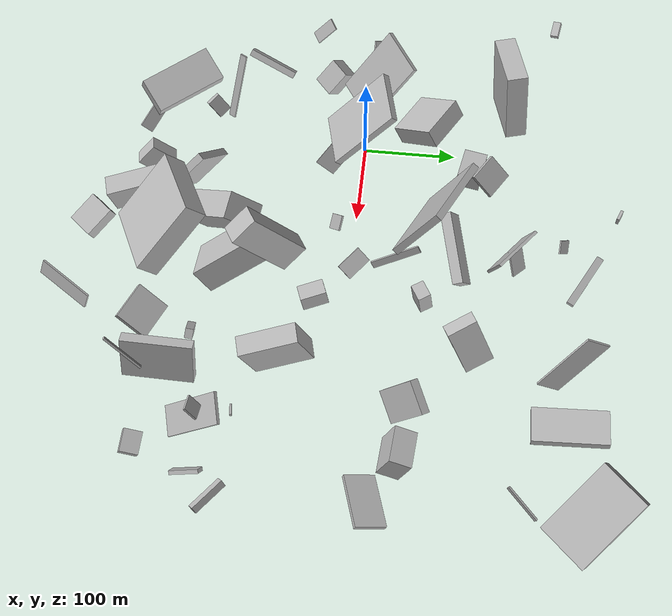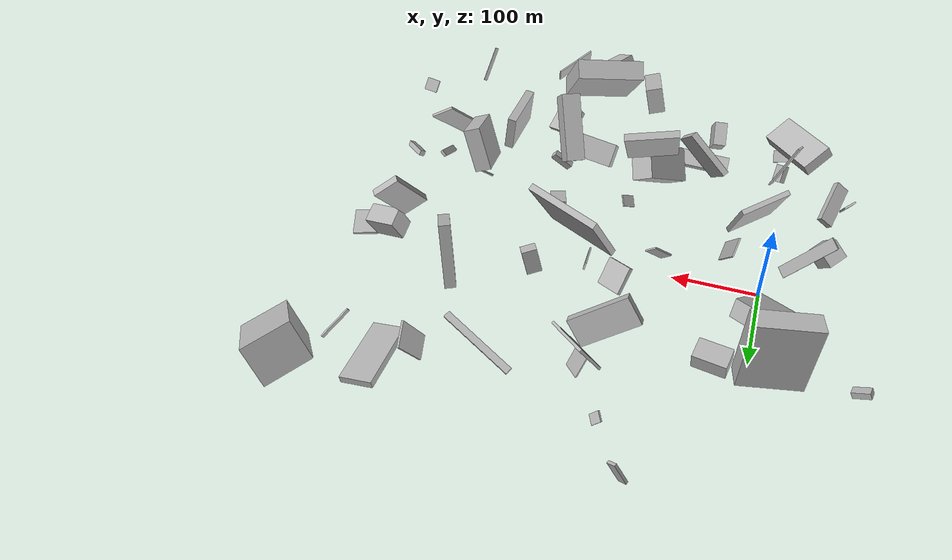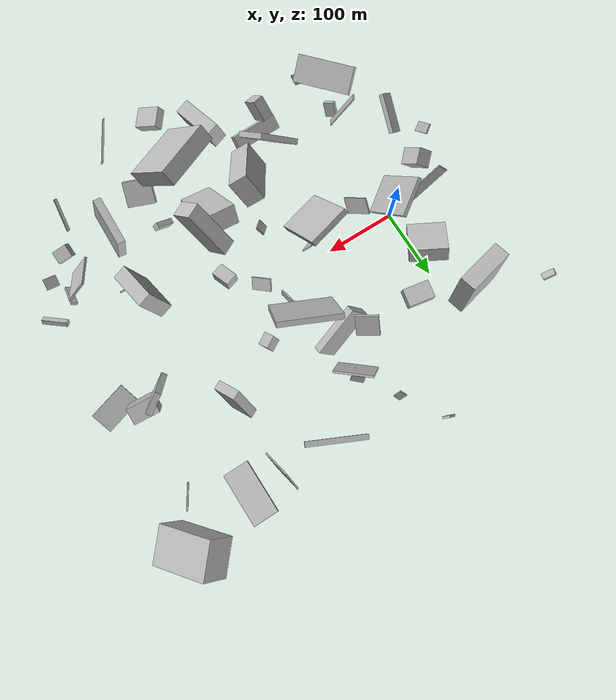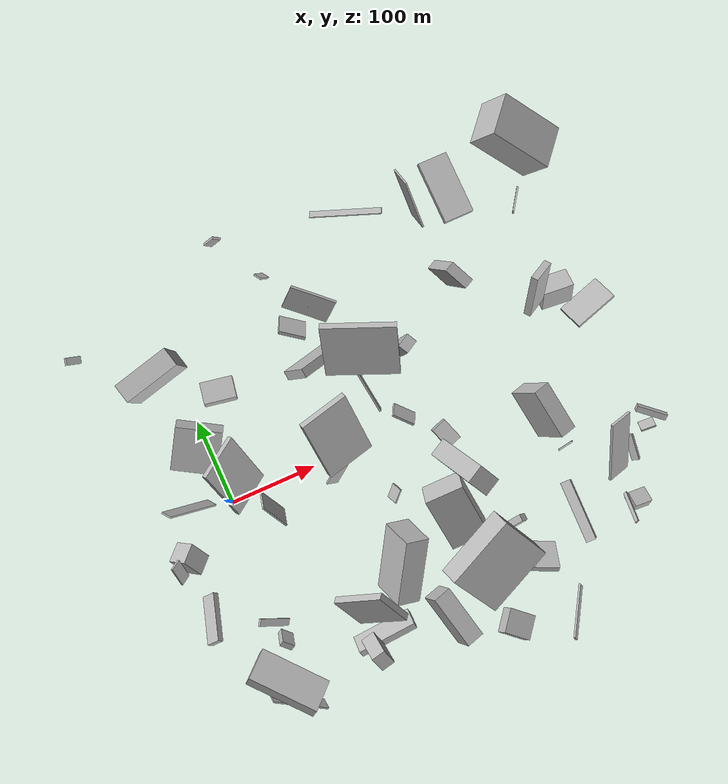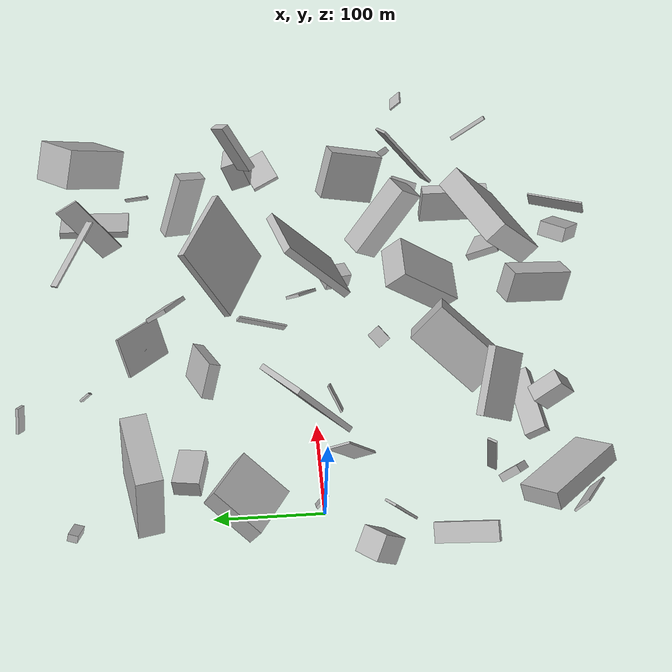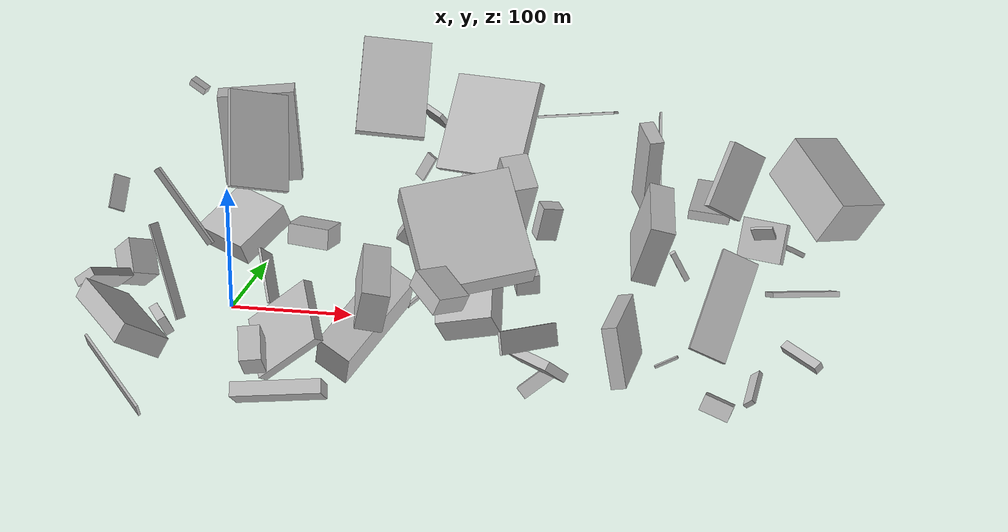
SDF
<sdf version="1.6">
 <world name="default">
  <scene>
   <sky><clouds><speed>12</speed></clouds></sky>
   <ambient>0.4 0.4 0.4 1</ambient>
   <background>0.7 0.7 0.7 1</background>
   <shadows>1</shadows>
  </scene>
  <gravity>0 0 -9.8066</gravity>
  <magnetic_field>6e-06 2.3e-05 -4.2e-05</magnetic_field>
  <physics default="0" name="default_physics" type="ode">
   <ode>
    <solver>
     <type>quick</type>
     <iters>10</iters>
     <sor>1.0</sor>
     <use_dynamic_moi_rescaling>0</use_dynamic_moi_rescaling>
    </solver>
    <constraints>
     <cfm>0</cfm>
     <erp>0.2</erp>
     <contact_max_correcting_vel>100</contact_max_correcting_vel>
     <contact_surface_layer>0.001</contact_surface_layer>
    </constraints>
   </ode>
   <max_step_size>0.004</max_step_size>
   <real_time_factor>1</real_time_factor>
   <real_time_update_rate>250</real_time_update_rate>
  </physics>
  <light name="sun" type="directional">
   <pose>0 0 10 0 0 0</pose>
   <diffuse>0.8 0.8 0.8 1</diffuse>
   <specular>0.2 0.2 0.2 1</specular>
   <attenuation>
    <range>1000</range>
    <constant>0.9</constant>
    <linear>0.01</linear>
    <quadratic>0.001</quadratic>
   </attenuation>
   <direction>-0.5 0.1 -0.9</direction>
  </light>
  <model name="building_1">
   <static>0</static>
   <pose>135.11531608683498 -135.79559603104371 60.600964509356665 2.161390322644908 -0.5540039236285031 1.0223039430514198</pose>
   <link name="link">
    <gravity>0</gravity>
    <pose>0 0 14.0 0 0 0</pose>
    <collision name="collision"><geometry><box><size>80 43 28</size></box></geometry></collision>
    <visual name="visual">
     <cast_shadows>0</cast_shadows>
     <geometry><box><size>80 43 28</size></box></geometry>
     <material>
      <script>
       <uri>model://HANNAS_wall/materials/scripts</uri>
       <uri>model://HANNAS_wall/materials/textures</uri>
       <name>vrc/HANNAS_wall</name>
      </script>
     </material>
    </visual>
   </link>
  </model>
  <model name="building_2">
   <static>0</static>
   <pose>135.61674107693483 216.1435291479652 21.61221724500912 2.274765037367589 -0.8799288791358028 3.094870508200572</pose>
   <link name="link">
    <gravity>0</gravity>
    <pose>0 0 5.5 0 0 0</pose>
    <collision name="collision"><geometry><box><size>14 2 11</size></box></geometry></collision>
    <visual name="visual">
     <cast_shadows>0</cast_shadows>
     <geometry><box><size>14 2 11</size></box></geometry>
     <material>
      <script>
       <uri>model://HANNAS_wall/materials/scripts</uri>
       <uri>model://HANNAS_wall/materials/textures</uri>
       <name>vrc/HANNAS_wall</name>
      </script>
     </material>
    </visual>
   </link>
  </model>
  <model name="building_3">
   <static>0</static>
   <pose>178.75855793924737 -238.16307017018386 103.83061704970618 -0.7098163001077181 -1.2607634040727518 -0.6142031225852523</pose>
   <link name="link">
    <gravity>0</gravity>
    <pose>0 0 30.5 0 0 0</pose>
    <collision name="collision"><geometry><box><size>31 20 61</size></box></geometry></collision>
    <visual name="visual">
     <cast_shadows>0</cast_shadows>
     <geometry><box><size>31 20 61</size></box></geometry>
     <material>
      <script>
       <uri>model://HANNAS_wall/materials/scripts</uri>
       <uri>model://HANNAS_wall/materials/textures</uri>
       <name>vrc/HANNAS_wall</name>
      </script>
     </material>
    </visual>
   </link>
  </model>
  <model name="building_4">
   <static>0</static>
   <pose>223.29696585347892 -102.03641801601826 67.91198506973893 -0.6900914582829918 0.19649372181718275 3.1366637834762336</pose>
   <link name="link">
    <gravity>0</gravity>
    <pose>0 0 13.5 0 0 0</pose>
    <collision name="collision"><geometry><box><size>43 74 27</size></box></geometry></collision>
    <visual name="visual">
     <cast_shadows>0</cast_shadows>
     <geometry><box><size>43 74 27</size></box></geometry>
     <material>
      <script>
       <uri>model://HANNAS_wall/materials/scripts</uri>
       <uri>model://HANNAS_wall/materials/textures</uri>
       <name>vrc/HANNAS_wall</name>
      </script>
     </material>
    </visual>
   </link>
  </model>
  <model name="building_5">
   <static>0</static>
   <pose>423.96064088625087 170.32642818873146 22.580603815545558 2.102462695021887 0.003981991492520609 2.5123887606604995</pose>
   <link name="link">
    <gravity>0</gravity>
    <pose>0 0 20.0 0 0 0</pose>
    <collision name="collision"><geometry><box><size>2 4 40</size></box></geometry></collision>
    <visual name="visual">
     <cast_shadows>0</cast_shadows>
     <geometry><box><size>2 4 40</size></box></geometry>
     <material>
      <script>
       <uri>model://HANNAS_wall/materials/scripts</uri>
       <uri>model://HANNAS_wall/materials/textures</uri>
       <name>vrc/HANNAS_wall</name>
      </script>
     </material>
    </visual>
   </link>
  </model>
  <model name="building_6">
   <static>0</static>
   <pose>455.81648045205947 40.27928548255646 27.900295135527863 -0.35100279136366697 0.024503716439567492 0.2958358905731354</pose>
   <link name="link">
    <gravity>0</gravity>
    <pose>0 0 2.0 0 0 0</pose>
    <collision name="collision"><geometry><box><size>53 31 4</size></box></geometry></collision>
    <visual name="visual">
     <cast_shadows>0</cast_shadows>
     <geometry><box><size>53 31 4</size></box></geometry>
     <material>
      <script>
       <uri>model://HANNAS_wall/materials/scripts</uri>
       <uri>model://HANNAS_wall/materials/textures</uri>
       <name>vrc/HANNAS_wall</name>
      </script>
     </material>
    </visual>
   </link>
  </model>
  <model name="building_7">
   <static>0</static>
   <pose>314.8673431732788 233.374579004466 65.01911994859711 0.011572708486025464 -1.061015212101421 1.7210231503841737</pose>
   <link name="link">
    <gravity>0</gravity>
    <pose>0 0 12.5 0 0 0</pose>
    <collision name="collision"><geometry><box><size>80 2 25</size></box></geometry></collision>
    <visual name="visual">
     <cast_shadows>0</cast_shadows>
     <geometry><box><size>80 2 25</size></box></geometry>
     <material>
      <script>
       <uri>model://HANNAS_wall/materials/scripts</uri>
       <uri>model://HANNAS_wall/materials/textures</uri>
       <name>vrc/HANNAS_wall</name>
      </script>
     </material>
    </visual>
   </link>
  </model>
  <model name="building_8">
   <static>0</static>
   <pose>43.07721971325648 -17.2620604006095 31.44816067269079 -0.5651036366355645 -0.8638225018651593 2.059942896450071</pose>
   <link name="link">
    <gravity>0</gravity>
    <pose>0 0 11.5 0 0 0</pose>
    <collision name="collision"><geometry><box><size>46 2 23</size></box></geometry></collision>
    <visual name="visual">
     <cast_shadows>0</cast_shadows>
     <geometry><box><size>46 2 23</size></box></geometry>
     <material>
      <script>
       <uri>model://HANNAS_wall/materials/scripts</uri>
       <uri>model://HANNAS_wall/materials/textures</uri>
       <name>vrc/HANNAS_wall</name>
      </script>
     </material>
    </visual>
   </link>
  </model>
  <model name="building_9">
   <static>0</static>
   <pose>441.6521193035824 226.79858882182634 51.431804077744 -1.9345870757318429 -1.0003825479083868 -0.4037390899181982</pose>
   <link name="link">
    <gravity>0</gravity>
    <pose>0 0 25.5 0 0 0</pose>
    <collision name="collision"><geometry><box><size>44 80 51</size></box></geometry></collision>
    <visual name="visual">
     <cast_shadows>0</cast_shadows>
     <geometry><box><size>44 80 51</size></box></geometry>
     <material>
      <script>
       <uri>model://HANNAS_wall/materials/scripts</uri>
       <uri>model://HANNAS_wall/materials/textures</uri>
       <name>vrc/HANNAS_wall</name>
      </script>
     </material>
    </visual>
   </link>
  </model>
  <model name="building_10">
   <static>0</static>
   <pose>139.22977169554127 134.04923806949358 126.38326764179808 0.8060878750686372 -0.25139558864643685 2.5267161810790397</pose>
   <link name="link">
    <gravity>0</gravity>
    <pose>0 0 2.0 0 0 0</pose>
    <collision name="collision"><geometry><box><size>29 27 4</size></box></geometry></collision>
    <visual name="visual">
     <cast_shadows>0</cast_shadows>
     <geometry><box><size>29 27 4</size></box></geometry>
     <material>
      <script>
       <uri>model://HANNAS_wall/materials/scripts</uri>
       <uri>model://HANNAS_wall/materials/textures</uri>
       <name>vrc/HANNAS_wall</name>
      </script>
     </material>
    </visual>
   </link>
  </model>
  <model name="building_11">
   <static>0</static>
   <pose>0.8268093542902041 -160.82893633170625 55.67216269910335 2.0864718969755494 0.4234822099807009 -0.8124348493261232</pose>
   <link name="link">
    <gravity>0</gravity>
    <pose>0 0 3.5 0 0 0</pose>
    <collision name="collision"><geometry><box><size>15 21 7</size></box></geometry></collision>
    <visual name="visual">
     <cast_shadows>0</cast_shadows>
     <geometry><box><size>15 21 7</size></box></geometry>
     <material>
      <script>
       <uri>model://HANNAS_wall/materials/scripts</uri>
       <uri>model://HANNAS_wall/materials/textures</uri>
       <name>vrc/HANNAS_wall</name>
      </script>
     </material>
    </visual>
   </link>
  </model>
  <model name="building_12">
   <static>0</static>
   <pose>-21.392426668105642 50.03890108561207 33.21267962919398 -0.2514722669743151 -1.0684433602969559 -1.884062338221587</pose>
   <link name="link">
    <gravity>0</gravity>
    <pose>0 0 26.0 0 0 0</pose>
    <collision name="collision"><geometry><box><size>21 52 52</size></box></geometry></collision>
    <visual name="visual">
     <cast_shadows>0</cast_shadows>
     <geometry><box><size>21 52 52</size></box></geometry>
     <material>
      <script>
       <uri>model://HANNAS_wall/materials/scripts</uri>
       <uri>model://HANNAS_wall/materials/textures</uri>
       <name>vrc/HANNAS_wall</name>
      </script>
     </material>
    </visual>
   </link>
  </model>
  <model name="building_13">
   <static>0</static>
   <pose>-16.388459606181595 -234.3540413823772 42.504206615960996 2.646307544605016 -0.57433010160131 2.534376103822763</pose>
   <link name="link">
    <gravity>0</gravity>
    <pose>0 0 8.0 0 0 0</pose>
    <collision name="collision"><geometry><box><size>70 2 16</size></box></geometry></collision>
    <visual name="visual">
     <cast_shadows>0</cast_shadows>
     <geometry><box><size>70 2 16</size></box></geometry>
     <material>
      <script>
       <uri>model://HANNAS_wall/materials/scripts</uri>
       <uri>model://HANNAS_wall/materials/textures</uri>
       <name>vrc/HANNAS_wall</name>
      </script>
     </material>
    </visual>
   </link>
  </model>
  <model name="building_14">
   <static>0</static>
   <pose>433.5668517714506 -127.2888201345599 20.75387855407132 -2.6641499090402494 -0.6627492406556755 -0.38305530969943813</pose>
   <link name="link">
    <gravity>0</gravity>
    <pose>0 0 2.0 0 0 0</pose>
    <collision name="collision"><geometry><box><size>9 31 4</size></box></geometry></collision>
    <visual name="visual">
     <cast_shadows>0</cast_shadows>
     <geometry><box><size>9 31 4</size></box></geometry>
     <material>
      <script>
       <uri>model://HANNAS_wall/materials/scripts</uri>
       <uri>model://HANNAS_wall/materials/textures</uri>
       <name>vrc/HANNAS_wall</name>
      </script>
     </material>
    </visual>
   </link>
  </model>
  <model name="building_15">
   <static>0</static>
   <pose>340.4433211470405 -45.014293825362245 82.48849047484183 0.31630144019089756 0.26320142379083683 0.2521557191065774</pose>
   <link name="link">
    <gravity>0</gravity>
    <pose>0 0 25.5 0 0 0</pose>
    <collision name="collision"><geometry><box><size>19 57 51</size></box></geometry></collision>
    <visual name="visual">
     <cast_shadows>0</cast_shadows>
     <geometry><box><size>19 57 51</size></box></geometry>
     <material>
      <script>
       <uri>model://HANNAS_wall/materials/scripts</uri>
       <uri>model://HANNAS_wall/materials/textures</uri>
       <name>vrc/HANNAS_wall</name>
      </script>
     </material>
    </visual>
   </link>
  </model>
  <model name="building_16">
   <static>0</static>
   <pose>164.50591066364703 -71.23481308604141 42.28489024791164 0.9906192739458065 0.6335838136850434 1.9776007864013656</pose>
   <link name="link">
    <gravity>0</gravity>
    <pose>0 0 8.5 0 0 0</pose>
    <collision name="collision"><geometry><box><size>14 2 17</size></box></geometry></collision>
    <visual name="visual">
     <cast_shadows>0</cast_shadows>
     <geometry><box><size>14 2 17</size></box></geometry>
     <material>
      <script>
       <uri>model://HANNAS_wall/materials/scripts</uri>
       <uri>model://HANNAS_wall/materials/textures</uri>
       <name>vrc/HANNAS_wall</name>
      </script>
     </material>
    </visual>
   </link>
  </model>
  <model name="building_17">
   <static>0</static>
   <pose>92.8466335044842 -172.19659834550222 57.85222205167442 2.1544672280583805 -0.7049041731075413 2.037222814082844</pose>
   <link name="link">
    <gravity>0</gravity>
    <pose>0 0 4.0 0 0 0</pose>
    <collision name="collision"><geometry><box><size>49 65 8</size></box></geometry></collision>
    <visual name="visual">
     <cast_shadows>0</cast_shadows>
     <geometry><box><size>49 65 8</size></box></geometry>
     <material>
      <script>
       <uri>model://HANNAS_wall/materials/scripts</uri>
       <uri>model://HANNAS_wall/materials/textures</uri>
       <name>vrc/HANNAS_wall</name>
      </script>
     </material>
    </visual>
   </link>
  </model>
  <model name="building_18">
   <static>0</static>
   <pose>380.47113649940525 225.08474086537632 34.30816833495241 1.4703367738130637 0.03897958823185189 -1.557707657894082</pose>
   <link name="link">
    <gravity>0</gravity>
    <pose>0 0 17.5 0 0 0</pose>
    <collision name="collision"><geometry><box><size>73 8 35</size></box></geometry></collision>
    <visual name="visual">
     <cast_shadows>0</cast_shadows>
     <geometry><box><size>73 8 35</size></box></geometry>
     <material>
      <script>
       <uri>model://HANNAS_wall/materials/scripts</uri>
       <uri>model://HANNAS_wall/materials/textures</uri>
       <name>vrc/HANNAS_wall</name>
      </script>
     </material>
    </visual>
   </link>
  </model>
  <model name="building_19">
   <static>0</static>
   <pose>235.39898413902287 -50.844341197245186 104.26417111288146 -0.0832283427314771 -0.6742971092831568 2.124597223566311</pose>
   <link name="link">
    <gravity>0</gravity>
    <pose>0 0 38.0 0 0 0</pose>
    <collision name="collision"><geometry><box><size>30 21 76</size></box></geometry></collision>
    <visual name="visual">
     <cast_shadows>0</cast_shadows>
     <geometry><box><size>30 21 76</size></box></geometry>
     <material>
      <script>
       <uri>model://HANNAS_wall/materials/scripts</uri>
       <uri>model://HANNAS_wall/materials/textures</uri>
       <name>vrc/HANNAS_wall</name>
      </script>
     </material>
    </visual>
   </link>
  </model>
  <model name="building_20">
   <static>0</static>
   <pose>122.77107511633582 98.71629780380508 45.52075567420934 2.145009563785714 -0.3646938035843489 1.6332416154063332</pose>
   <link name="link">
    <gravity>0</gravity>
    <pose>0 0 37.0 0 0 0</pose>
    <collision name="collision"><geometry><box><size>11 34 74</size></box></geometry></collision>
    <visual name="visual">
     <cast_shadows>0</cast_shadows>
     <geometry><box><size>11 34 74</size></box></geometry>
     <material>
      <script>
       <uri>model://HANNAS_wall/materials/scripts</uri>
       <uri>model://HANNAS_wall/materials/textures</uri>
       <name>vrc/HANNAS_wall</name>
      </script>
     </material>
    </visual>
   </link>
  </model>
  <model name="building_21">
   <static>0</static>
   <pose>-71.58215854234692 -109.90596122987716 57.50533043410116 0.872474737504659 0.346031111593875 1.3084614752208663</pose>
   <link name="link">
    <gravity>0</gravity>
    <pose>0 0 8.5 0 0 0</pose>
    <collision name="collision"><geometry><box><size>54 7 17</size></box></geometry></collision>
    <visual name="visual">
     <cast_shadows>0</cast_shadows>
     <geometry><box><size>54 7 17</size></box></geometry>
     <material>
      <script>
       <uri>model://HANNAS_wall/materials/scripts</uri>
       <uri>model://HANNAS_wall/materials/textures</uri>
       <name>vrc/HANNAS_wall</name>
      </script>
     </material>
    </visual>
   </link>
  </model>
  <model name="building_22">
   <static>0</static>
   <pose>138.90490188476747 -19.092693762620513 160.13088909565312 -0.16099129115817656 -0.7036365352657468 -1.227870183724312</pose>
   <link name="link">
    <gravity>0</gravity>
    <pose>0 0 40.0 0 0 0</pose>
    <collision name="collision"><geometry><box><size>7 53 80</size></box></geometry></collision>
    <visual name="visual">
     <cast_shadows>0</cast_shadows>
     <geometry><box><size>7 53 80</size></box></geometry>
     <material>
      <script>
       <uri>model://HANNAS_wall/materials/scripts</uri>
       <uri>model://HANNAS_wall/materials/textures</uri>
       <name>vrc/HANNAS_wall</name>
      </script>
     </material>
    </visual>
   </link>
  </model>
  <model name="building_23">
   <static>0</static>
   <pose>247.05535825713645 -197.4358885837027 113.11696673292258 0.7515598997424334 0.11784344384251783 -2.7064388232252456</pose>
   <link name="link">
    <gravity>0</gravity>
    <pose>0 0 40.0 0 0 0</pose>
    <collision name="collision"><geometry><box><size>80 23 80</size></box></geometry></collision>
    <visual name="visual">
     <cast_shadows>0</cast_shadows>
     <geometry><box><size>80 23 80</size></box></geometry>
     <material>
      <script>
       <uri>model://HANNAS_wall/materials/scripts</uri>
       <uri>model://HANNAS_wall/materials/textures</uri>
       <name>vrc/HANNAS_wall</name>
      </script>
     </material>
    </visual>
   </link>
  </model>
  <model name="building_24">
   <static>0</static>
   <pose>190.7627048626744 64.32881093626906 103.58354933112244 0.5241597439389103 0.06790457783457442 2.736071886148128</pose>
   <link name="link">
    <gravity>0</gravity>
    <pose>0 0 40.0 0 0 0</pose>
    <collision name="collision"><geometry><box><size>80 7 80</size></box></geometry></collision>
    <visual name="visual">
     <cast_shadows>0</cast_shadows>
     <geometry><box><size>80 7 80</size></box></geometry>
     <material>
      <script>
       <uri>model://HANNAS_wall/materials/scripts</uri>
       <uri>model://HANNAS_wall/materials/textures</uri>
       <name>vrc/HANNAS_wall</name>
      </script>
     </material>
    </visual>
   </link>
  </model>
  <model name="building_25">
   <static>0</static>
   <pose>-70.55198439202829 -60.63912458746074 99.77644558316706 0.5934138296146869 -0.44129921334191824 -2.5346180278155046</pose>
   <link name="link">
    <gravity>0</gravity>
    <pose>0 0 14.0 0 0 0</pose>
    <collision name="collision"><geometry><box><size>13 2 28</size></box></geometry></collision>
    <visual name="visual">
     <cast_shadows>0</cast_shadows>
     <geometry><box><size>13 2 28</size></box></geometry>
     <material>
      <script>
       <uri>model://HANNAS_wall/materials/scripts</uri>
       <uri>model://HANNAS_wall/materials/textures</uri>
       <name>vrc/HANNAS_wall</name>
      </script>
     </material>
    </visual>
   </link>
  </model>
  <model name="building_26">
   <static>0</static>
   <pose>94.35777094716182 278.44724473153406 35.561136361725765 -2.884006043196968 1.0500979655486808 2.9797485487806585</pose>
   <link name="link">
    <gravity>0</gravity>
    <pose>0 0 5.0 0 0 0</pose>
    <collision name="collision"><geometry><box><size>25 3 10</size></box></geometry></collision>
    <visual name="visual">
     <cast_shadows>0</cast_shadows>
     <geometry><box><size>25 3 10</size></box></geometry>
     <material>
      <script>
       <uri>model://HANNAS_wall/materials/scripts</uri>
       <uri>model://HANNAS_wall/materials/textures</uri>
       <name>vrc/HANNAS_wall</name>
      </script>
     </material>
    </visual>
   </link>
  </model>
  <model name="building_27">
   <static>0</static>
   <pose>382.4154677482592 -196.51474382936078 147.93799539352642 2.5494414889871937 -0.5526348180059264 2.2648297732238825</pose>
   <link name="link">
    <gravity>0</gravity>
    <pose>0 0 22.0 0 0 0</pose>
    <collision name="collision"><geometry><box><size>2 4 44</size></box></geometry></collision>
    <visual name="visual">
     <cast_shadows>0</cast_shadows>
     <geometry><box><size>2 4 44</size></box></geometry>
     <material>
      <script>
       <uri>model://HANNAS_wall/materials/scripts</uri>
       <uri>model://HANNAS_wall/materials/textures</uri>
       <name>vrc/HANNAS_wall</name>
      </script>
     </material>
    </visual>
   </link>
  </model>
  <model name="building_28">
   <static>0</static>
   <pose>-15.734996624940095 156.01040899280537 56.23523198399526 0.06191540156217229 0.057323141073579865 -1.3342355935003376</pose>
   <link name="link">
    <gravity>0</gravity>
    <pose>0 0 40.0 0 0 0</pose>
    <collision name="collision"><geometry><box><size>22 65 80</size></box></geometry></collision>
    <visual name="visual">
     <cast_shadows>0</cast_shadows>
     <geometry><box><size>22 65 80</size></box></geometry>
     <material>
      <script>
       <uri>model://HANNAS_wall/materials/scripts</uri>
       <uri>model://HANNAS_wall/materials/textures</uri>
       <name>vrc/HANNAS_wall</name>
      </script>
     </material>
    </visual>
   </link>
  </model>
  <model name="building_29">
   <static>0</static>
   <pose>-59.281395736590255 -48.50751180764706 37.783411697180625 -0.37443496896006756 -0.6687130842143159 -0.52735877288389</pose>
   <link name="link">
    <gravity>0</gravity>
    <pose>0 0 15.0 0 0 0</pose>
    <collision name="collision"><geometry><box><size>23 23 30</size></box></geometry></collision>
    <visual name="visual">
     <cast_shadows>0</cast_shadows>
     <geometry><box><size>23 23 30</size></box></geometry>
     <material>
      <script>
       <uri>model://HANNAS_wall/materials/scripts</uri>
       <uri>model://HANNAS_wall/materials/textures</uri>
       <name>vrc/HANNAS_wall</name>
      </script>
     </material>
    </visual>
   </link>
  </model>
  <model name="building_30">
   <static>0</static>
   <pose>7.33620002609135 -146.1587050656395 48.89348382315542 0.3616950128811923 0.01554820659155918 -2.149120290145447</pose>
   <link name="link">
    <gravity>0</gravity>
    <pose>0 0 37.0 0 0 0</pose>
    <collision name="collision"><geometry><box><size>8 2 74</size></box></geometry></collision>
    <visual name="visual">
     <cast_shadows>0</cast_shadows>
     <geometry><box><size>8 2 74</size></box></geometry>
     <material>
      <script>
       <uri>model://HANNAS_wall/materials/scripts</uri>
       <uri>model://HANNAS_wall/materials/textures</uri>
       <name>vrc/HANNAS_wall</name>
      </script>
     </material>
    </visual>
   </link>
  </model>
  <model name="building_31">
   <static>0</static>
   <pose>315.56519866529356 134.23786469351774 64.08730600722583 -0.027190506124678413 -0.3183351571352796 2.0448188901442097</pose>
   <link name="link">
    <gravity>0</gravity>
    <pose>0 0 35.5 0 0 0</pose>
    <collision name="collision"><geometry><box><size>29 12 71</size></box></geometry></collision>
    <visual name="visual">
     <cast_shadows>0</cast_shadows>
     <geometry><box><size>29 12 71</size></box></geometry>
     <material>
      <script>
       <uri>model://HANNAS_wall/materials/scripts</uri>
       <uri>model://HANNAS_wall/materials/textures</uri>
       <name>vrc/HANNAS_wall</name>
      </script>
     </material>
    </visual>
   </link>
  </model>
  <model name="building_32">
   <static>0</static>
   <pose>421.04032872065636 56.39089969025588 66.53055637940462 1.9460736063651867 -0.09896170702569732 3.05909131945772</pose>
   <link name="link">
    <gravity>0</gravity>
    <pose>0 0 11.0 0 0 0</pose>
    <collision name="collision"><geometry><box><size>35 32 22</size></box></geometry></collision>
    <visual name="visual">
     <cast_shadows>0</cast_shadows>
     <geometry><box><size>35 32 22</size></box></geometry>
     <material>
      <script>
       <uri>model://HANNAS_wall/materials/scripts</uri>
       <uri>model://HANNAS_wall/materials/textures</uri>
       <name>vrc/HANNAS_wall</name>
      </script>
     </material>
    </visual>
   </link>
  </model>
  <model name="building_33">
   <static>0</static>
   <pose>466.57577497421045 -101.6076111977809 39.01654222217191 -2.9462345366435208 -0.5640263720979957 0.7666271557444938</pose>
   <link name="link">
    <gravity>0</gravity>
    <pose>0 0 3.5 0 0 0</pose>
    <collision name="collision"><geometry><box><size>7 36 7</size></box></geometry></collision>
    <visual name="visual">
     <cast_shadows>0</cast_shadows>
     <geometry><box><size>7 36 7</size></box></geometry>
     <material>
      <script>
       <uri>model://HANNAS_wall/materials/scripts</uri>
       <uri>model://HANNAS_wall/materials/textures</uri>
       <name>vrc/HANNAS_wall</name>
      </script>
     </material>
    </visual>
   </link>
  </model>
  <model name="building_34">
   <static>0</static>
   <pose>349.08573358250305 -164.84435419137444 66.48926434483107 1.7407554890480703 -0.021919417956759387 -1.588575031650913</pose>
   <link name="link">
    <gravity>0</gravity>
    <pose>0 0 5.5 0 0 0</pose>
    <collision name="collision"><geometry><box><size>69 46 11</size></box></geometry></collision>
    <visual name="visual">
     <cast_shadows>0</cast_shadows>
     <geometry><box><size>69 46 11</size></box></geometry>
     <material>
      <script>
       <uri>model://HANNAS_wall/materials/scripts</uri>
       <uri>model://HANNAS_wall/materials/textures</uri>
       <name>vrc/HANNAS_wall</name>
      </script>
     </material>
    </visual>
   </link>
  </model>
  <model name="building_35">
   <static>0</static>
   <pose>238.2985975357127 -251.7640200400325 119.44313656907102 1.1351828411024767 -0.12820788748457215 -2.2508914451213653</pose>
   <link name="link">
    <gravity>0</gravity>
    <pose>0 0 15.5 0 0 0</pose>
    <collision name="collision"><geometry><box><size>26 14 31</size></box></geometry></collision>
    <visual name="visual">
     <cast_shadows>0</cast_shadows>
     <geometry><box><size>26 14 31</size></box></geometry>
     <material>
      <script>
       <uri>model://HANNAS_wall/materials/scripts</uri>
       <uri>model://HANNAS_wall/materials/textures</uri>
       <name>vrc/HANNAS_wall</name>
      </script>
     </material>
    </visual>
   </link>
  </model>
  <model name="building_36">
   <static>0</static>
   <pose>131.87986423145264 -199.0151099337448 25.192500662127113 -1.6882765910314916 0.6258779462673086 1.5705109840103162</pose>
   <link name="link">
    <gravity>0</gravity>
    <pose>0 0 34.0 0 0 0</pose>
    <collision name="collision"><geometry><box><size>21 11 68</size></box></geometry></collision>
    <visual name="visual">
     <cast_shadows>0</cast_shadows>
     <geometry><box><size>21 11 68</size></box></geometry>
     <material>
      <script>
       <uri>model://HANNAS_wall/materials/scripts</uri>
       <uri>model://HANNAS_wall/materials/textures</uri>
       <name>vrc/HANNAS_wall</name>
      </script>
     </material>
    </visual>
   </link>
  </model>
  <model name="building_37">
   <static>0</static>
   <pose>-42.66285339776239 12.436904695407149 77.42302044696046 -0.7101142984486626 -0.9411377947490223 3.0641774089120286</pose>
   <link name="link">
    <gravity>0</gravity>
    <pose>0 0 6.5 0 0 0</pose>
    <collision name="collision"><geometry><box><size>74 2 13</size></box></geometry></collision>
    <visual name="visual">
     <cast_shadows>0</cast_shadows>
     <geometry><box><size>74 2 13</size></box></geometry>
     <material>
      <script>
       <uri>model://HANNAS_wall/materials/scripts</uri>
       <uri>model://HANNAS_wall/materials/textures</uri>
       <name>vrc/HANNAS_wall</name>
      </script>
     </material>
    </visual>
   </link>
  </model>
  <model name="building_38">
   <static>0</static>
   <pose>-42.96426594959502 -173.323623690384 74.59995365810536 1.6747583730577893 0.534293888238807 0.7482020941136158</pose>
   <link name="link">
    <gravity>0</gravity>
    <pose>0 0 40.0 0 0 0</pose>
    <collision name="collision"><geometry><box><size>38 16 80</size></box></geometry></collision>
    <visual name="visual">
     <cast_shadows>0</cast_shadows>
     <geometry><box><size>38 16 80</size></box></geometry>
     <material>
      <script>
       <uri>model://HANNAS_wall/materials/scripts</uri>
       <uri>model://HANNAS_wall/materials/textures</uri>
       <name>vrc/HANNAS_wall</name>
      </script>
     </material>
    </visual>
   </link>
  </model>
  <model name="building_39">
   <static>0</static>
   <pose>186.52961979652065 71.04634980021113 63.39361282877428 2.0357149493043076 -0.2420490569723828 0.024871236086461246</pose>
   <link name="link">
    <gravity>0</gravity>
    <pose>0 0 26.0 0 0 0</pose>
    <collision name="collision"><geometry><box><size>2 8 52</size></box></geometry></collision>
    <visual name="visual">
     <cast_shadows>0</cast_shadows>
     <geometry><box><size>2 8 52</size></box></geometry>
     <material>
      <script>
       <uri>model://HANNAS_wall/materials/scripts</uri>
       <uri>model://HANNAS_wall/materials/textures</uri>
       <name>vrc/HANNAS_wall</name>
      </script>
     </material>
    </visual>
   </link>
  </model>
  <model name="building_40">
   <static>0</static>
   <pose>36.450375073509505 119.04509159807151 13.232327692991936 -0.033791431847180746 -0.07073230707081604 -1.7450053811573372</pose>
   <link name="link">
    <gravity>0</gravity>
    <pose>0 0 9.0 0 0 0</pose>
    <collision name="collision"><geometry><box><size>25 37 18</size></box></geometry></collision>
    <visual name="visual">
     <cast_shadows>0</cast_shadows>
     <geometry><box><size>25 37 18</size></box></geometry>
     <material>
      <script>
       <uri>model://HANNAS_wall/materials/scripts</uri>
       <uri>model://HANNAS_wall/materials/textures</uri>
       <name>vrc/HANNAS_wall</name>
      </script>
     </material>
    </visual>
   </link>
  </model>
  <model name="building_41">
   <static>0</static>
   <pose>436.7981040960243 -109.13363666111564 135.11672150821298 2.27114827352819 -0.13447315543877053 -0.07620786210136102</pose>
   <link name="link">
    <gravity>0</gravity>
    <pose>0 0 1.0 0 0 0</pose>
    <collision name="collision"><geometry><box><size>16 15 2</size></box></geometry></collision>
    <visual name="visual">
     <cast_shadows>0</cast_shadows>
     <geometry><box><size>16 15 2</size></box></geometry>
     <material>
      <script>
       <uri>model://HANNAS_wall/materials/scripts</uri>
       <uri>model://HANNAS_wall/materials/textures</uri>
       <name>vrc/HANNAS_wall</name>
      </script>
     </material>
    </visual>
   </link>
  </model>
  <model name="building_42">
   <static>0</static>
   <pose>80.85835306734867 -205.7890628569507 67.9636935205549 2.412022410088866 -0.08227842825065966 0.20707153940024162</pose>
   <link name="link">
    <gravity>0</gravity>
    <pose>0 0 13.0 0 0 0</pose>
    <collision name="collision"><geometry><box><size>16 30 26</size></box></geometry></collision>
    <visual name="visual">
     <cast_shadows>0</cast_shadows>
     <geometry><box><size>16 30 26</size></box></geometry>
     <material>
      <script>
       <uri>model://HANNAS_wall/materials/scripts</uri>
       <uri>model://HANNAS_wall/materials/textures</uri>
       <name>vrc/HANNAS_wall</name>
      </script>
     </material>
    </visual>
   </link>
  </model>
  <model name="building_43">
   <static>0</static>
   <pose>-78.15933158726871 196.87679253323267 117.79088825583199 -1.0586050022660827 -0.12412955673325608 1.3071000339871355</pose>
   <link name="link">
    <gravity>0</gravity>
    <pose>0 0 8.0 0 0 0</pose>
    <collision name="collision"><geometry><box><size>8 6 16</size></box></geometry></collision>
    <visual name="visual">
     <cast_shadows>0</cast_shadows>
     <geometry><box><size>8 6 16</size></box></geometry>
     <material>
      <script>
       <uri>model://HANNAS_wall/materials/scripts</uri>
       <uri>model://HANNAS_wall/materials/textures</uri>
       <name>vrc/HANNAS_wall</name>
      </script>
     </material>
    </visual>
   </link>
  </model>
  <model name="building_44">
   <static>0</static>
   <pose>282.0831370018386 -149.86589956739553 18.2122250589061 -0.7011524163156525 0.16198336150889447 1.568867193499473</pose>
   <link name="link">
    <gravity>0</gravity>
    <pose>0 0 5.0 0 0 0</pose>
    <collision name="collision"><geometry><box><size>8 28 10</size></box></geometry></collision>
    <visual name="visual">
     <cast_shadows>0</cast_shadows>
     <geometry><box><size>8 28 10</size></box></geometry>
     <material>
      <script>
       <uri>model://HANNAS_wall/materials/scripts</uri>
       <uri>model://HANNAS_wall/materials/textures</uri>
       <name>vrc/HANNAS_wall</name>
      </script>
     </material>
    </visual>
   </link>
  </model>
  <model name="building_45">
   <static>0</static>
   <pose>284.1859178278454 -194.10555294086285 53.65797475269953 -0.20563847848513106 -0.6160206363059738 -1.8917210539251965</pose>
   <link name="link">
    <gravity>0</gravity>
    <pose>0 0 3.5 0 0 0</pose>
    <collision name="collision"><geometry><box><size>35 39 7</size></box></geometry></collision>
    <visual name="visual">
     <cast_shadows>0</cast_shadows>
     <geometry><box><size>35 39 7</size></box></geometry>
     <material>
      <script>
       <uri>model://HANNAS_wall/materials/scripts</uri>
       <uri>model://HANNAS_wall/materials/textures</uri>
       <name>vrc/HANNAS_wall</name>
      </script>
     </material>
    </visual>
   </link>
  </model>
  <model name="building_46">
   <static>0</static>
   <pose>404.9489990774073 83.16360219254798 132.41830987405282 -2.8472177129309872 -0.5406196093483325 -2.6396765704178726</pose>
   <link name="link">
    <gravity>0</gravity>
    <pose>0 0 27.5 0 0 0</pose>
    <collision name="collision"><geometry><box><size>31 8 55</size></box></geometry></collision>
    <visual name="visual">
     <cast_shadows>0</cast_shadows>
     <geometry><box><size>31 8 55</size></box></geometry>
     <material>
      <script>
       <uri>model://HANNAS_wall/materials/scripts</uri>
       <uri>model://HANNAS_wall/materials/textures</uri>
       <name>vrc/HANNAS_wall</name>
      </script>
     </material>
    </visual>
   </link>
  </model>
  <model name="building_47">
   <static>0</static>
   <pose>419.3092798845347 -93.26495592473691 108.69538827945794 -2.5078164126142948 -0.45767069624729345 -2.9080907474918827</pose>
   <link name="link">
    <gravity>0</gravity>
    <pose>0 0 40.0 0 0 0</pose>
    <collision name="collision"><geometry><box><size>29 3 80</size></box></geometry></collision>
    <visual name="visual">
     <cast_shadows>0</cast_shadows>
     <geometry><box><size>29 3 80</size></box></geometry>
     <material>
      <script>
       <uri>model://HANNAS_wall/materials/scripts</uri>
       <uri>model://HANNAS_wall/materials/textures</uri>
       <name>vrc/HANNAS_wall</name>
      </script>
     </material>
    </visual>
   </link>
  </model>
  <model name="building_48">
   <static>0</static>
   <pose>294.7082595475996 -261.831183236205 94.91557634965095 0.2995020667636392 -0.1800970929126473 -2.129094848115193</pose>
   <link name="link">
    <gravity>0</gravity>
    <pose>0 0 8.0 0 0 0</pose>
    <collision name="collision"><geometry><box><size>57 2 16</size></box></geometry></collision>
    <visual name="visual">
     <cast_shadows>0</cast_shadows>
     <geometry><box><size>57 2 16</size></box></geometry>
     <material>
      <script>
       <uri>model://HANNAS_wall/materials/scripts</uri>
       <uri>model://HANNAS_wall/materials/textures</uri>
       <name>vrc/HANNAS_wall</name>
      </script>
     </material>
    </visual>
   </link>
  </model>
  <model name="building_49">
   <static>0</static>
   <pose>238.03401100962472 73.03488027282242 64.4086928639409 -1.7242920979972662 0.1946770858438328 -1.0688413937698515</pose>
   <link name="link">
    <gravity>0</gravity>
    <pose>0 0 8.5 0 0 0</pose>
    <collision name="collision"><geometry><box><size>13 29 17</size></box></geometry></collision>
    <visual name="visual">
     <cast_shadows>0</cast_shadows>
     <geometry><box><size>13 29 17</size></box></geometry>
     <material>
      <script>
       <uri>model://HANNAS_wall/materials/scripts</uri>
       <uri>model://HANNAS_wall/materials/textures</uri>
       <name>vrc/HANNAS_wall</name>
      </script>
     </material>
    </visual>
   </link>
  </model>
  <model name="building_50">
   <static>0</static>
   <pose>412.761879924459 -183.47969623559274 22.3804754327528 -0.3711432599841264 -0.32357506025821753 -1.527619006407128</pose>
   <link name="link">
    <gravity>0</gravity>
    <pose>0 0 6.0 0 0 0</pose>
    <collision name="collision"><geometry><box><size>18 22 12</size></box></geometry></collision>
    <visual name="visual">
     <cast_shadows>0</cast_shadows>
     <geometry><box><size>18 22 12</size></box></geometry>
     <material>
      <script>
       <uri>model://HANNAS_wall/materials/scripts</uri>
       <uri>model://HANNAS_wall/materials/textures</uri>
       <name>vrc/HANNAS_wall</name>
      </script>
     </material>
    </visual>
   </link>
  </model>
  <model name="building_51">
   <static>0</static>
   <pose>256.1771971561343 -26.42657876132961 55.853579046552156 -1.622977259295642 -0.1693542358973339 1.9102462499724295</pose>
   <link name="link">
    <gravity>0</gravity>
    <pose>0 0 9.0 0 0 0</pose>
    <collision name="collision"><geometry><box><size>26 16 18</size></box></geometry></collision>
    <visual name="visual">
     <cast_shadows>0</cast_shadows>
     <geometry><box><size>26 16 18</size></box></geometry>
     <material>
      <script>
       <uri>model://HANNAS_wall/materials/scripts</uri>
       <uri>model://HANNAS_wall/materials/textures</uri>
       <name>vrc/HANNAS_wall</name>
      </script>
     </material>
    </visual>
   </link>
  </model>
  <model name="building_52">
   <static>0</static>
   <pose>42.27716467101271 30.453505131398586 130.78586128051668 -1.122338746066362 -0.9659262828915371 1.8170695493199833</pose>
   <link name="link">
    <gravity>0</gravity>
    <pose>0 0 25.0 0 0 0</pose>
    <collision name="collision"><geometry><box><size>80 5 50</size></box></geometry></collision>
    <visual name="visual">
     <cast_shadows>0</cast_shadows>
     <geometry><box><size>80 5 50</size></box></geometry>
     <material>
      <script>
       <uri>model://HANNAS_wall/materials/scripts</uri>
       <uri>model://HANNAS_wall/materials/textures</uri>
       <name>vrc/HANNAS_wall</name>
      </script>
     </material>
    </visual>
   </link>
  </model>
  <model name="building_53">
   <static>0</static>
   <pose>204.93908067476593 16.74891038606133 71.75202550175801 -2.1552868687722886 0.7953741390268717 -2.817130300049064</pose>
   <link name="link">
    <gravity>0</gravity>
    <pose>0 0 13.5 0 0 0</pose>
    <collision name="collision"><geometry><box><size>3 17 27</size></box></geometry></collision>
    <visual name="visual">
     <cast_shadows>0</cast_shadows>
     <geometry><box><size>3 17 27</size></box></geometry>
     <material>
      <script>
       <uri>model://HANNAS_wall/materials/scripts</uri>
       <uri>model://HANNAS_wall/materials/textures</uri>
       <name>vrc/HANNAS_wall</name>
      </script>
     </material>
    </visual>
   </link>
  </model>
  <model name="building_54">
   <static>0</static>
   <pose>188.33820359718146 147.3458653250874 43.30303585522726 -1.3455952195010077 0.4877878503960066 0.9564837623893212</pose>
   <link name="link">
    <gravity>0</gravity>
    <pose>0 0 26.5 0 0 0</pose>
    <collision name="collision"><geometry><box><size>3 40 53</size></box></geometry></collision>
    <visual name="visual">
     <cast_shadows>0</cast_shadows>
     <geometry><box><size>3 40 53</size></box></geometry>
     <material>
      <script>
       <uri>model://HANNAS_wall/materials/scripts</uri>
       <uri>model://HANNAS_wall/materials/textures</uri>
       <name>vrc/HANNAS_wall</name>
      </script>
     </material>
    </visual>
   </link>
  </model>
  <model name="building_55">
   <static>0</static>
   <pose>120.06476198407536 -18.700963888808126 15.55779440886796 0.9887002900075247 -0.701191934388165 0.5843911331489667</pose>
   <link name="link">
    <gravity>0</gravity>
    <pose>0 0 1.0 0 0 0</pose>
    <collision name="collision"><geometry><box><size>28 16 2</size></box></geometry></collision>
    <visual name="visual">
     <cast_shadows>0</cast_shadows>
     <geometry><box><size>28 16 2</size></box></geometry>
     <material>
      <script>
       <uri>model://HANNAS_wall/materials/scripts</uri>
       <uri>model://HANNAS_wall/materials/textures</uri>
       <name>vrc/HANNAS_wall</name>
      </script>
     </material>
    </visual>
   </link>
  </model>
  <model name="building_56">
   <static>0</static>
   <pose>170.660456919219 174.35001125979022 18.503436274732408 0.3970650874449061 -0.08891421613413848 -0.7282479751759953</pose>
   <link name="link">
    <gravity>0</gravity>
    <pose>0 0 14.5 0 0 0</pose>
    <collision name="collision"><geometry><box><size>18 2 29</size></box></geometry></collision>
    <visual name="visual">
     <cast_shadows>0</cast_shadows>
     <geometry><box><size>18 2 29</size></box></geometry>
     <material>
      <script>
       <uri>model://HANNAS_wall/materials/scripts</uri>
       <uri>model://HANNAS_wall/materials/textures</uri>
       <name>vrc/HANNAS_wall</name>
      </script>
     </material>
    </visual>
   </link>
  </model>
  <model name="building_57">
   <static>0</static>
   <pose>243.3320697797949 230.09972101425407 106.2903613111042 2.9121504674097918 0.1952148637080307 1.1109204484272868</pose>
   <link name="link">
    <gravity>0</gravity>
    <pose>0 0 1.0 0 0 0</pose>
    <collision name="collision"><geometry><box><size>7 80 2</size></box></geometry></collision>
    <visual name="visual">
     <cast_shadows>0</cast_shadows>
     <geometry><box><size>7 80 2</size></box></geometry>
     <material>
      <script>
       <uri>model://HANNAS_wall/materials/scripts</uri>
       <uri>model://HANNAS_wall/materials/textures</uri>
       <name>vrc/HANNAS_wall</name>
      </script>
     </material>
    </visual>
   </link>
  </model>
  <model name="building_58">
   <static>0</static>
   <pose>367.24086089192065 -94.75579995821043 20.92732971289741 0.4553008330119593 0.11499109927820356 -1.348860075188411</pose>
   <link name="link">
    <gravity>0</gravity>
    <pose>0 0 1.0 0 0 0</pose>
    <collision name="collision"><geometry><box><size>2 19 2</size></box></geometry></collision>
    <visual name="visual">
     <cast_shadows>0</cast_shadows>
     <geometry><box><size>2 19 2</size></box></geometry>
     <material>
      <script>
       <uri>model://HANNAS_wall/materials/scripts</uri>
       <uri>model://HANNAS_wall/materials/textures</uri>
       <name>vrc/HANNAS_wall</name>
      </script>
     </material>
    </visual>
   </link>
  </model>
 </world>
</sdf>
